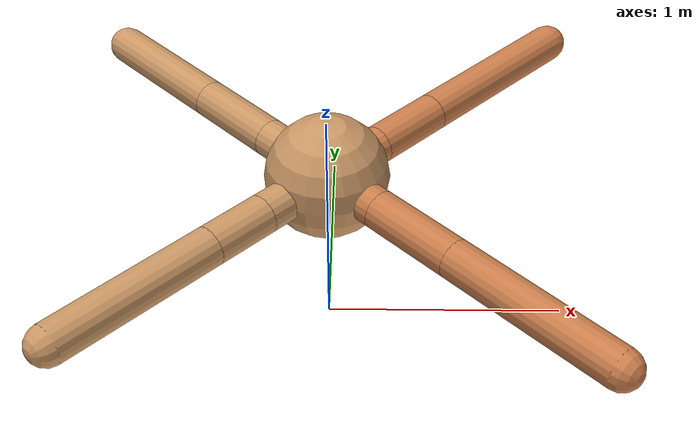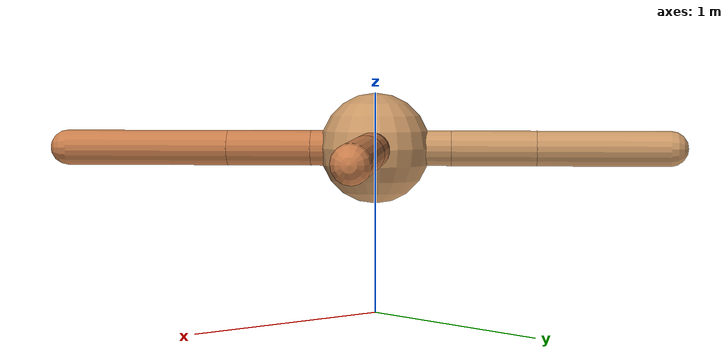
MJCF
<mujoco model="ant">
  <compiler angle="degree" coordinate="local" inertiafromgeom="true" />
  <option integrator="RK4" timestep="0.01" />
  <custom>
    <numeric data="0.0 0.0 0.55 1.0 0.0 0.0 0.0 0.0 1.0 0.0 -1.0 0.0 -1.0 0.0 1.0" name="init_qpos" />
  </custom>
  <default>
    <joint armature="1" damping="1" limited="true" />
    <geom conaffinity="0" condim="3" density="5.0" friction="1.5 0.1 0.1" margin="0.01" rgba="0.8 0.6 0.4 1" />
  </default>
  <worldbody>
    <body name="torso" pos="0 0 0.75">
      <geom name="torso_geom" pos="0 0 0" size="0.25" type="sphere" />

      <body name="front_left_leg" pos="0 0 0">
        <geom fromto="0.0 0.0 0.0 0.20195976912140626 0.20195976912140626 0.0" name="aux_1_geom" size="0.08" type="capsule" rgba=".8 .5 .3 1" />
        <body name="aux_1" pos="0.20195976912140626 0.20195976912140626 0.0">
          <joint axis="0 0 1" name="hip_1" pos="0.0 0.0 0.0" range="-40 40" type="hinge" />
          <geom fromto="0.0 0.0 0.0 0.2272023044985459 0.2272023044985459 0.0" name="left_leg_geom" size="0.08" type="capsule" rgba=".8 .5 .3 1" />
          <body pos="0.2272023044985459 0.2272023044985459 0.0" name="front_left_foot">
            <joint axis="-1 1 0" name="ankle_1" pos="0.0 0.0 0.0" range="30 100" type="hinge" />
            <geom fromto="0.0 0.0 0.0 0.5507857920936575 0.5507857920936575 0.0" name="left_ankle_geom" size="0.08" type="capsule" rgba=".8 .5 .3 1" />
          </body>
        </body>
      </body>
      <body name="front_right_leg" pos="0 0 0">
        <geom fromto="0.0 0.0 0.0 -0.24285299447270378 0.24285299447270378 0.0" name="aux_2_geom" size="0.08" type="capsule" />
        <body name="aux_2" pos="-0.24285299447270378 0.24285299447270378 0.0">
          <joint axis="0 0 1" name="hip_2" pos="0.0 0.0 0.0" range="-40 40" type="hinge" />
          <geom fromto="0.0 0.0 0.0 -0.27140675715666673 0.27140675715666673 0.0" name="right_leg_geom" size="0.08" type="capsule" />
          <body pos="-0.27140675715666673 0.27140675715666673 0.0" name="front_right_foot">
            <joint axis="1 1 0" name="ankle_2" pos="0.0 0.0 0.0" range="-100 -30" type="hinge" />
            <geom fromto="0.0 0.0 0.0 -0.4227564047934975 0.4227564047934975 0.0" name="right_ankle_geom" size="0.08" type="capsule" />
          </body>
        </body>
      </body>
      <body name="left_back_leg" pos="0 0 0">
        <geom fromto="0.0 0.0 0.0 -0.23683114999026467 -0.23683114999026467 0.0" name="aux_3_geom" size="0.08" type="capsule" />
        <body name="aux_3" pos="-0.23683114999026467 -0.23683114999026467 0.0">
          <joint axis="0 0 1" name="hip_3" pos="0.0 0.0 0.0" range="-40 40" type="hinge" />
          <geom fromto="0.0 0.0 0.0 -0.18178901835932748 -0.18178901835932748 0.0" name="back_leg_geom" size="0.08" type="capsule" />
          <body pos="-0.18178901835932748 -0.18178901835932748 0.0" name="left_back_foot">
            <joint axis="-1 1 0" name="ankle_3" pos="0.0 0.0 0.0" range="-100 -30" type="hinge" />
            <geom fromto="0.0 0.0 0.0 -0.49765280902014386 -0.49765280902014386 0.0" name="third_ankle_geom" size="0.08" type="capsule" />
          </body>
        </body>
      </body>
      <body name="right_back_leg" pos="0 0 0">
        <geom fromto="0.0 0.0 0.0 0.2060384126045201 -0.2060384126045201 0.0" name="aux_4_geom" size="0.08" type="capsule" rgba=".8 .5 .3 1" />
        <body name="aux_4" pos="0.2060384126045201 -0.2060384126045201 0.0">
          <joint axis="0 0 1" name="hip_4" pos="0.0 0.0 0.0" range="-40 40" type="hinge" />
          <geom fromto="0.0 0.0 0.0 0.26899849103165535 -0.26899849103165535 0.0" name="rightback_leg_geom" size="0.08" type="capsule" rgba=".8 .5 .3 1" />
          <body pos="0.26899849103165535 -0.26899849103165535 0.0" name="right_back_foot">
            <joint axis="1 1 0" name="ankle_4" pos="0.0 0.0 0.0" range="30 100" type="hinge" />
            <geom fromto="0.0 0.0 0.0 0.5228708011837586 -0.5228708011837586 0.0" name="fourth_ankle_geom" size="0.08" type="capsule" rgba=".8 .5 .3 1" />
          </body>
        </body>
      </body>
    </body>
  </worldbody>
  <actuator>
    <motor ctrllimited="true" ctrlrange="-1.0 1.0" joint="hip_4" gear="150" />
    <motor ctrllimited="true" ctrlrange="-1.0 1.0" joint="ankle_4" gear="150" />
    <motor ctrllimited="true" ctrlrange="-1.0 1.0" joint="hip_1" gear="150" />
    <motor ctrllimited="true" ctrlrange="-1.0 1.0" joint="ankle_1" gear="150" />
    <motor ctrllimited="true" ctrlrange="-1.0 1.0" joint="hip_2" gear="150" />
    <motor ctrllimited="true" ctrlrange="-1.0 1.0" joint="ankle_2" gear="150" />
    <motor ctrllimited="true" ctrlrange="-1.0 1.0" joint="hip_3" gear="150" />
    <motor ctrllimited="true" ctrlrange="-1.0 1.0" joint="ankle_3" gear="150" />
  </actuator>
</mujoco>
